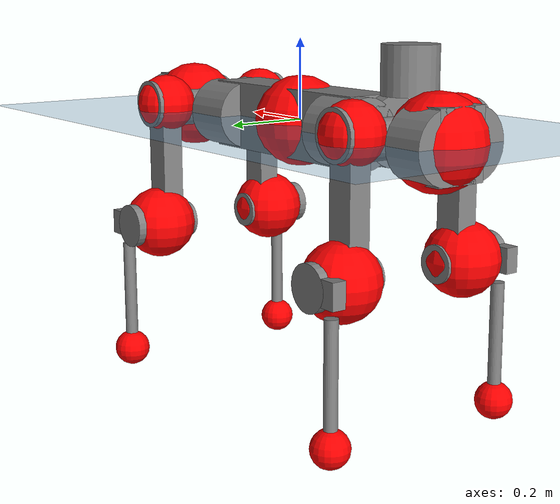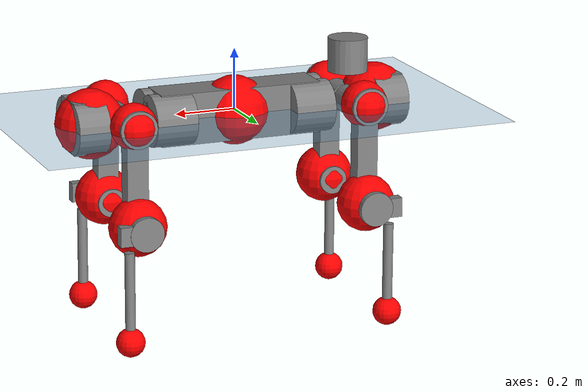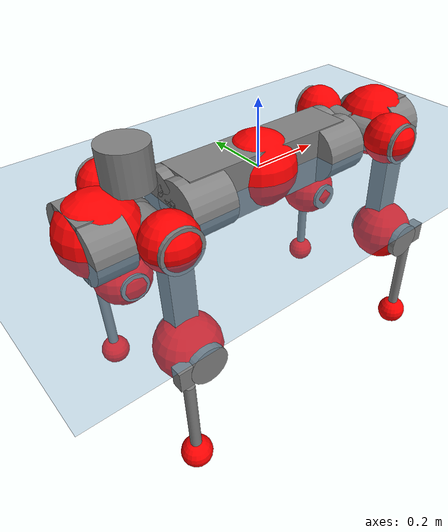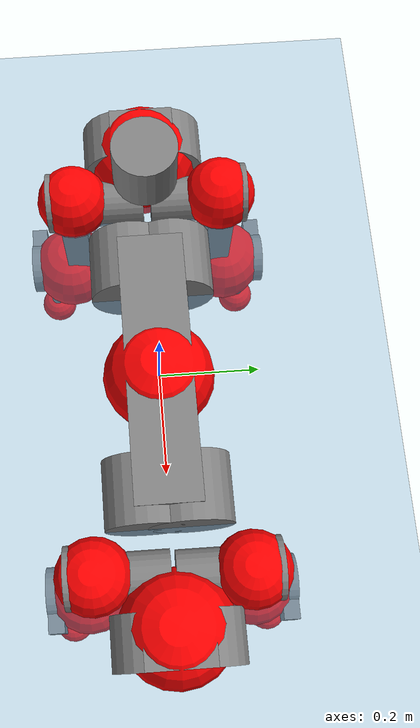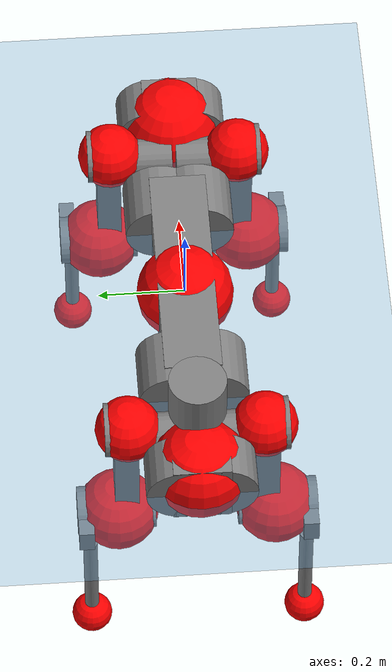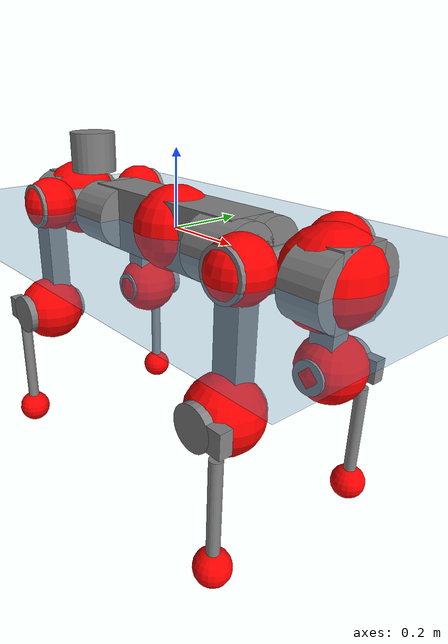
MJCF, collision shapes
<mujoco model="anymal_c">
  <compiler angle="radian" assetdir="assets" balanceinertia="true" inertiafromgeom="false"/>

  <option timestep="0.005" density="1.2" viscosity="2e-05"/>

  <size nkey="1"/>

  <visual>
    <quality shadowsize="8192"/>
    <map shadowclip="0.5"/>
  </visual>

  <default>
    <default class="/">
      <material specular="0" shininess="0.25"/>
      <geom contype="0" conaffinity="0" group="1" solref="-1000 -80"/>
      <site size="0.01 0.005 0.005" group="5"/>
      <general forcelimited="true" forcerange="-80 80" biastype="affine" gainprm="80" biasprm="0 -80 -2"/>
      <default class="anymal_c">
        <joint armature="0.01" damping="0.01" frictionloss="0.1"/>
        <default class="visual">
          <geom type="mesh" group="2"/>
          <default class="visual_zflip"/>
        </default>
        <default class="collision">
          <geom type="cylinder" group="3"/>
          <default class="foot">
            <geom size="0.03 0 0" type="sphere" condim="6" priority="1" friction="0.8 0.02 0.01" solimp="0.015 1 0.03"/>
          </default>
        </default>
      </default>
      <default class="reward_collision_sphere">
        <geom group="5" rgba="1 0 0 1"/>
      </default>
    </default>
  </default>

  <asset>
    <texture type="skybox" colorspace="auto" name="//unnamed_texture_0" builtin="gradient" rgb1="0.95 0.95 0.95" rgb2="0.95 0.95 0.95" width="100" height="600"/>
    <texture type="2d" colorspace="auto" name="texplane" builtin="checker" rgb1="0.345 0.575 0.748" rgb2="0.345 0.575 0.748" markrgb="1 1 1" width="512" height="512"/>
    <texture type="2d" colorspace="linear" name="base" file="base.png"/>
    <texture type="2d" colorspace="linear" name="top_shell" file="top_shell.png"/>
    <texture type="2d" colorspace="linear" name="bottom_shell" file="bottom_shell.png"/>
    <texture type="2d" colorspace="linear" name="remote" file="remote.png"/>
    <texture type="2d" colorspace="linear" name="hatch" file="hatch.png"/>
    <texture type="2d" colorspace="linear" name="handle" file="handle.png"/>
    <texture type="2d" colorspace="linear" name="face" file="face.png"/>
    <texture type="2d" colorspace="linear" name="battery" file="battery.png"/>
    <texture type="2d" colorspace="linear" name="lidar_cage" file="lidar_cage.png"/>
    <texture type="2d" colorspace="linear" name="depth_camera" file="depth_camera.png"/>
    <texture type="2d" colorspace="linear" name="wide_angle_camera" file="wide_angle_camera.png"/>
    <texture type="2d" colorspace="linear" name="lidar" file="lidar.png"/>
    <texture type="2d" colorspace="linear" name="drive" file="drive.png"/>
    <texture type="2d" colorspace="linear" name="hip_l" file="hip_l.png"/>
    <texture type="2d" colorspace="linear" name="shank_l" file="shank_l.png"/>
    <texture type="2d" colorspace="linear" name="foot" file="foot.png"/>
    <texture type="2d" colorspace="linear" name="thigh" file="thigh.png"/>
    <texture type="2d" colorspace="linear" name="shank_r" file="shank_r.png"/>
    <texture type="2d" colorspace="linear" name="hip_r" file="hip_r.png"/>
    <material name="MatPlane" class="/" texture="texplane" texuniform="true" texrepeat="2 2" specular="0.9" shininess="0.5"/>
    <material name="black_plastic" class="/" rgba="0.007 0.007 0.007 1"/>
    <material name="green" class="/" rgba="0.052 0.178 0.033 1"/>
    <material name="red" class="/" rgba="0.178 0.006 0.005 1"/>
    <material name="yellow" class="/" rgba="0.178 0.119 0.006 1"/>
    <material name="lwl" class="/" rgba="0.8 0.8 0.8 1"/>
    <material name="base" class="/" texture="base"/>
    <material name="top_shell" class="/" texture="top_shell"/>
    <material name="bottom_shell" class="/" texture="bottom_shell"/>
    <material name="hip_l" class="/" texture="hip_l"/>
    <material name="thigh" class="/" texture="thigh"/>
    <material name="shank_l" class="/" texture="shank_l"/>
    <material name="foot" class="/" texture="foot"/>
    <material name="hip_r" class="/" texture="hip_r"/>
    <material name="shank" class="/" texture="shank_r"/>
    <material name="hatch" class="/" texture="hatch"/>
    <material name="remote" class="/" texture="remote"/>
    <material name="handle" class="/" texture="handle"/>
    <material name="face" class="/" texture="face"/>
    <material name="depth_camera" class="/" texture="depth_camera"/>
    <material name="wide_angle_camera" class="/" texture="wide_angle_camera"/>
    <material name="battery" class="/" texture="battery"/>
    <material name="lidar_cage" class="/" texture="lidar_cage"/>
    <material name="lidar" class="/" texture="lidar"/>
    <material name="drive" class="/" texture="drive"/>
    <mesh name="base_0" class="/" file="base_0.obj"/>
    <mesh name="base_1" class="/" file="base_1.obj"/>
    <mesh name="base_2" class="/" file="base_2.obj"/>
    <mesh name="base_3" class="/" file="base_3.obj"/>
    <mesh name="base_4" class="/" file="base_4.obj"/>
    <mesh name="base_5" class="/" file="base_5.obj"/>
    <mesh name="top_shell" class="/" file="top_shell.obj"/>
    <mesh name="bottom_shell" class="/" file="bottom_shell.obj"/>
    <mesh name="remote" class="/" file="remote.obj"/>
    <mesh name="handle" class="/" file="handle.obj"/>
    <mesh name="face" class="/" file="face.obj"/>
    <mesh name="wide_angle_camera" class="/" file="wide_angle_camera.obj"/>
    <mesh name="depth_camera" class="/" file="depth_camera.obj"/>
    <mesh name="battery" class="/" file="battery.obj"/>
    <mesh name="lidar_cage" class="/" file="lidar_cage.obj"/>
    <mesh name="lidar" class="/" file="lidar.obj"/>
    <mesh name="drive" class="/" file="drive.obj"/>
    <mesh name="hip_l" class="/" file="hip_l.obj"/>
    <mesh name="thigh" class="/" file="thigh.obj"/>
    <mesh name="shank_l" class="/" file="shank_l.obj"/>
    <mesh name="foot" class="/" file="foot.obj"/>
    <mesh name="hip_r" class="/" file="hip_r.obj"/>
    <mesh name="hatch" class="/" file="hatch.obj"/>
    <mesh name="shank_r" class="/" file="shank_r.obj"/>
  </asset>

  <worldbody>
    <geom name="floor" class="/" size="100 100 0.125" type="plane" group="0" material="MatPlane"/>
    <light name="toplight_shadow" class="/" pos="0 0 5" dir="0.0990148 0.0990148 -0.990148" type="directional" ambient="0.04 0.04 0.04" diffuse="0.55 0.55 0.55" specular="0.12 0.12 0.12"/>
    <light name="toplight_fill" class="/" pos="0 0 5" dir="0.0990148 0.0990148 -0.990148" type="directional" castshadow="false" ambient="0.04 0.04 0.04" diffuse="0.3 0.3 0.3" specular="0.08 0.08 0.08"/>
    <body name="trunk" childclass="anymal_c" pos="-0.00016781 -0.000471357 -0.00192321" quat="1 4.65865e-05 -8.26731e-05 5.22279e-05">
      <inertial pos="0.00130975 -0.000352492 0.0579537" quat="0.497008 0.509212 0.500248 0.493395" mass="16.146" diaginertia="1.01711 0.0463523 0.390772"/>
      <joint name="//unnamed_joint_0" type="free" armature="0" damping="0" frictionloss="0"/>
      <geom name="//unnamed_geom_1" class="visual" material="green" mesh="base_0"/>
      <geom name="//unnamed_geom_2" class="visual" material="yellow" mesh="base_1"/>
      <geom name="//unnamed_geom_3" class="visual" material="red" mesh="base_2"/>
      <geom name="//unnamed_geom_4" class="visual" material="black_plastic" mesh="base_3"/>
      <geom name="//unnamed_geom_5" class="visual" material="lwl" mesh="base_4"/>
      <geom name="//unnamed_geom_6" class="visual" material="base" mesh="base_5"/>
      <geom name="trunk_1" class="collision" size="0.271563 0.0655497 0.0842782" type="box"/>
      <geom name="trunk_2" class="collision" size="0.0842782 0.0678907" pos="0.236819 0.0415601 0" quat="0.707107 0 0.707107 0"/>
      <geom name="trunk_3" class="collision" size="0.0842782 0.0678907" pos="-0.236819 0.0415601 0" quat="0.707107 0 0.707107 0"/>
      <geom name="trunk_4" class="collision" size="0.0842782 0.0678907" pos="0.236819 -0.0415601 0" quat="0.707107 0 0.707107 0"/>
      <geom name="trunk_5" class="collision" size="0.0842782 0.0678907" pos="-0.236819 -0.0415601 0" quat="0.707107 0 0.707107 0"/>
      <geom name="//unnamed_geom_12" class="visual" material="top_shell" mesh="top_shell"/>
      <geom name="//unnamed_geom_13" class="visual" material="bottom_shell" mesh="bottom_shell"/>
      <geom name="//unnamed_geom_14" class="visual" material="remote" mesh="remote"/>
      <geom name="//unnamed_geom_15" class="visual" material="handle" mesh="handle"/>
      <geom name="//unnamed_geom_16" class="visual" pos="0.451317 0 0" quat="1 0 0 0" material="face" mesh="face"/>
      <geom name="trunk_6" class="collision" size="0.0515033 0.0655497 0.0842782" pos="0.511203 0 0" type="box"/>
      <geom name="//unnamed_geom_18" class="collision" size="0.0842782 0.0515033" pos="0.511203 0.0415601 0" quat="0.707107 0 0.707107 0"/>
      <geom name="//unnamed_geom_19" class="collision" size="0.0842782 0.0515033" pos="0.511203 -0.0415601 0" quat="0.707107 0 0.707107 0"/>
      <geom name="//unnamed_geom_20" class="visual" pos="0.502657 0 -0.0331887" quat="0.965926 0 0.258819 0" material="depth_camera" mesh="depth_camera"/>
      <geom name="//unnamed_geom_21" class="visual" pos="0.558566 0 0.0168672" material="wide_angle_camera" mesh="wide_angle_camera"/>
      <geom name="//unnamed_geom_22" class="visual_zflip" pos="-0.451317 0 0" quat="0 0 0 1" material="face" mesh="face"/>
      <geom name="trunk_7" class="collision" size="0.0515033 0.0655497 0.0842782" pos="-0.511203 0 0" quat="0 0 0 1" type="box"/>
      <geom name="//unnamed_geom_24" class="collision" size="0.0842782 0.0515033" pos="-0.511203 -0.0415601 0" quat="0 -0.707107 0 0.707107"/>
      <geom name="//unnamed_geom_25" class="collision" size="0.0842782 0.0515033" pos="-0.511203 0.0415601 0" quat="0 -0.707107 0 0.707107"/>
      <geom name="//unnamed_geom_26" class="visual" pos="-0.502657 0 -0.0331887" quat="0 -0.258819 0 0.965926" material="depth_camera" mesh="depth_camera"/>
      <geom name="//unnamed_geom_27" class="visual_zflip" pos="-0.558566 0 0.0168672" quat="0 0 0 1" material="wide_angle_camera" mesh="wide_angle_camera"/>
      <geom name="//unnamed_geom_28" class="visual" material="battery" mesh="battery"/>
      <geom name="//unnamed_geom_29" class="visual" pos="0 0.0389002 0.0324435" quat="0.683013 -0.183013 0.183013 0.683013" material="depth_camera" mesh="depth_camera"/>
      <geom name="//unnamed_geom_30" class="visual" pos="0 -0.0389002 0.0324435" quat="0.683013 0.183013 0.183013 -0.683013" material="depth_camera" mesh="depth_camera"/>
      <geom name="//unnamed_geom_31" class="visual" pos="-0.396332 0 0.0828149" quat="1 0 0 0" material="lidar_cage" mesh="lidar_cage"/>
      <geom name="trunk_8" class="collision" size="0.0655497 0.0561854" pos="-0.396332 0 0.150419"/>
      <geom name="//unnamed_geom_33" class="visual" pos="-0.396332 -0.000194514 0.160221" quat="0.707107 0 0 -0.707107" material="lidar" mesh="lidar"/>
      <geom name="//unnamed_geom_34" class="visual" pos="0.326538 0.0619358 -9.19461e-09" quat="0.258819 0.965926 0 0" material="drive" mesh="drive"/>
      <geom name="//unnamed_geom_35" class="visual" pos="0.326538 -0.0619358 9.19461e-09" quat="0.258819 -0.965926 0 0" material="drive" mesh="drive"/>
      <geom name="//unnamed_geom_36" class="visual" pos="-0.326538 0.0619358 9.19461e-09" quat="0 0 0.965926 -0.258819" material="drive" mesh="drive"/>
      <geom name="//unnamed_geom_37" class="visual" pos="-0.326538 -0.0619358 -9.19461e-09" quat="0 0 -0.965926 -0.258819" material="drive" mesh="drive"/>
      <geom name="//unnamed_geom_38" class="visual" pos="0.126303 0 0.0822515" quat="1 0 0 0" material="hatch" mesh="hatch"/>
      <geom name="//unnamed_geom_39" class="reward_collision_sphere" size="0.112371"/>
      <geom name="//unnamed_geom_40" class="reward_collision_sphere" size="0.112371" pos="0.48997 0 0"/>
      <geom name="//unnamed_geom_41" class="reward_collision_sphere" size="0.112371" pos="-0.48997 0 0"/>
      <site name="imu" pos="0.277235 0.0015453 0.0538641" size="0.00936424"/>
      <camera name="track" pos="0 -1.18743 0" quat="0.707107 0.707107 0 0" mode="trackcom"/>
      <camera name="ego_camera" pos="0.48997 0 -0.0450693" quat="-0.5 -0.5 0.5 0.5"/>
      <body name="LF_HIP" pos="0.328079 0.0602439 0.000146927" quat="0.258582 0.965988 -0.000893587 -0.00106153">
        <inertial pos="0.0618884 -0.0115334 -0.00857199" quat="-0.127963 0.713114 -0.12365 0.678089" mass="2.31102" diaginertia="0.00910328 0.000370333 0.00623669"/>
        <joint name="LF_HAA" pos="0 0 0" axis="0.999957 0.00840959 -0.00378427" range="-0.709466 0.539467" armature="0.00909497" damping="0.0139203" frictionloss="0.0872768"/>
        <geom name="//unnamed_geom_42" class="visual" pos="0 -0.000540878 8.88387e-05" quat="0.258819 -0.965926 0 0" material="hip_l" mesh="hip_l"/>
        <geom name="//unnamed_geom_43" class="visual" pos="0.0652205 -0.072699 -0.0459153" quat="0.183013 -0.683013 0.683013 0.183013" material="drive" mesh="drive"/>
        <geom name="//unnamed_geom_44" class="collision" size="0.0468212 0.0655497" pos="0.0652205 -0.00710072 -0.00778009" quat="-0.353553 -0.612372 0.612372 -0.353553"/>
        <body name="LF_THIGH" pos="0.0658631 -0.0447034 -0.0469977" quat="0.183069 -0.682791 0.683257 0.182872">
          <inertial pos="0.0366747 -0.000513361 -0.276832" quat="0.99208 -0.00244184 -0.0820715 0.0950597" mass="2.57527" diaginertia="0.0459601 0.00218923 0.00742179"/>
          <joint name="LF_HFE" pos="0 0 0" axis="0.99999 0.00413952 0.00145639" stiffness="0.0101676" range="-3.19103 3.16696" armature="0.00982246" damping="0" frictionloss="0.0920506"/>
          <geom name="//unnamed_geom_45" class="visual" pos="0.0098507 1.55224e-05 0" quat="0.707107 0 0 -0.707107" material="thigh" mesh="thigh"/>
          <geom name="//unnamed_geom_46" class="collision" size="0.0608676 0.037457" pos="0.0435529 0 0" quat="0.5 0.5 -0.5 -0.5"/>
          <geom name="//unnamed_geom_47" class="collision" size="0.0351159 0.0280927 0.13233" pos="0.0326647 0 -0.159223" quat="0.707107 0 0 -0.707107" type="box"/>
          <geom name="//unnamed_geom_48" class="visual" pos="0.109209 0 -0.321119" quat="1 0 0 0" material="drive" mesh="drive"/>
          <geom name="//unnamed_geom_49" class="collision" size="0.0468212 0.0655497" pos="0.0329913 0 -0.321119" quat="0.707107 0 0.707107 0"/>
          <geom name="//unnamed_geom_50" class="reward_collision_sphere" size="0.0749139" pos="0.0272206 0 0"/>
          <body name="LF_SHANK" pos="0.110559 -0.00112674 -0.320046" quat="1 0.000142386 -0.000477705 -0.000260794">
            <inertial pos="0.00418161 -0.0361178 -0.0928619" quat="0.994132 -0.105433 -0.00160707 -0.0241586" mass="0.47267" diaginertia="0.015003 0.000681877 0.00192345"/>
            <joint name="LF_KFE" pos="0 0 0" axis="0.999928 -0.0106012 0.00564172" range="-3.18221 3.19163" armature="0.0106196" damping="0.00386199" frictionloss="0.104265"/>
            <geom name="//unnamed_geom_51" class="visual" pos="0.0032121 0.0171271 0" quat="0.707107 0 0 -0.707107" material="shank_l" mesh="shank_l"/>
            <geom name="LF_kfe_act" class="collision" size="0.0561854 0.0187285" pos="0.0217765 0 0" quat="0.5 0.5 -0.5 -0.5"/>
            <geom name="//unnamed_geom_53" class="collision" size="0.0538434 0.0316043 0.0177921" pos="0.0217765 -0.0341381 0" quat="0.5 0.5 -0.5 -0.5" type="box"/>
            <geom name="//unnamed_geom_54" class="visual" pos="0.0142084 -0.0466979 -0.380802" quat="0.382683 0 0 -0.92388" material="foot" mesh="foot"/>
            <geom name="LF_calf" class="collision" size="0.0163874 0.132272" pos="0.0142091 -0.0522173 -0.190401" quat="0.707107 0 0 -0.707107"/>
            <geom name="LF_foot" class="foot" size="0.0246508" pos="0.0142091 -0.0522173 -0.355451" quat="0.707107 0 0 -0.707107"/>
            <geom name="//unnamed_geom_57" class="reward_collision_sphere" size="0.0936424" pos="-0.0544412 0 0"/>
            <geom name="//unnamed_geom_58" class="reward_collision_sphere" size="0.0468212" pos="0.0142091 -0.0522173 -0.355451"/>
            <site name="LF_foot" class="foot" pos="0.0142091 -0.0522173 -0.355451" quat="0.707107 0 0 -0.707107" size="0.00936424"/>
          </body>
        </body>
      </body>
      <body name="RF_HIP" pos="0.324775 -0.0602869 -0.000796481" quat="0.258003 -0.966144 0.000121761 -0.000652673">
        <inertial pos="0.062251 0.00969332 -0.00983575" quat="0.131441 0.678965 0.127386 0.710987" mass="2.288" diaginertia="0.00890647 0.00038528 0.00617187"/>
        <joint name="RF_HAA" pos="0 0 0" axis="0.999883 0.0143787 -0.00515606" range="-0.491357 0.74139" armature="0.00921968" damping="0.0133884" frictionloss="0.0924651"/>
        <geom name="//unnamed_geom_59" class="visual" pos="0 0.000540873 8.88385e-05" quat="0.258819 0.965926 0 0" material="hip_r" mesh="hip_r"/>
        <geom name="//unnamed_geom_60" class="visual" pos="0.0652205 0.072699 -0.0459153" quat="0.183013 0.683013 0.683013 -0.183013" material="drive" mesh="drive"/>
        <geom name="//unnamed_geom_61" class="collision" size="0.0468212 0.0655497" pos="0.0652205 0.00710072 -0.00778009" quat="-0.353553 0.612372 0.612372 0.353553"/>
        <body name="RF_THIGH" pos="0.0628229 0.0425385 -0.0499785" quat="0.182759 0.683909 0.682192 -0.182978">
          <inertial pos="0.0332365 0.000914433 -0.276602" quat="0.992886 -0.00520854 -0.081997 0.0861793" mass="2.49065" diaginertia="0.0454193 0.00222701 0.00771977"/>
          <joint name="RF_HFE" pos="0 0 0" axis="0.999998 -0.00197933 -0.00102999" stiffness="0.00877371" range="-3.16482 3.18297" armature="0.00940709" damping="0" frictionloss="0.0839187"/>
          <geom name="//unnamed_geom_62" class="visual" pos="0.0098507 1.55224e-05 0" quat="0.707107 0 0 -0.707107" material="thigh" mesh="thigh"/>
          <geom name="//unnamed_geom_63" class="collision" size="0.0608676 0.037457" pos="0.0435529 0 0" quat="0.5 0.5 0.5 0.5"/>
          <geom name="//unnamed_geom_64" class="collision" size="0.0351159 0.0280927 0.13233" pos="0.0326647 0 -0.159223" quat="0.707107 0 0 0.707107" type="box"/>
          <geom name="//unnamed_geom_65" class="visual" pos="0.109209 0 -0.321119" quat="1 0 0 0" material="drive" mesh="drive"/>
          <geom name="//unnamed_geom_66" class="collision" size="0.0468212 0.0655497" pos="0.0329913 0 -0.321119" quat="0.707107 0 0.707107 0"/>
          <geom name="//unnamed_geom_67" class="reward_collision_sphere" size="0.0749139" pos="0.0272206 0 0"/>
          <body name="RF_SHANK" pos="0.108906 0.000500326 -0.317967" quat="1 0.000102891 -0.000126201 0.00031549">
            <inertial pos="0.00663811 0.0371576 -0.0910308" quat="0.993624 0.111052 0.00759387 0.0179326" mass="0.475121" diaginertia="0.0156689 0.000668109 0.00200311"/>
            <joint name="RF_KFE" pos="0 0 0" axis="0.999862 0.00810846 -0.0144918" range="-3.18553 3.18228" armature="0.00820583" damping="0.009969" frictionloss="0.0973386"/>
            <geom name="//unnamed_geom_68" class="visual" pos="0.00321208 -0.017127 0" quat="0.707107 0 0 0.707107" material="shank" mesh="shank_r"/>
            <geom name="RF_kfe_act" class="collision" size="0.0561854 0.0187285" pos="0.0217765 0 0" quat="0.5 0.5 0.5 0.5"/>
            <geom name="//unnamed_geom_70" class="collision" size="0.0538434 0.0316043 0.0177921" pos="0.0217765 0.0341381 0" quat="0.5 0.5 0.5 0.5" type="box"/>
            <geom name="//unnamed_geom_71" class="visual" pos="0.0142099 0.0466979 -0.380802" quat="0.382683 0 0 0.92388" material="foot" mesh="foot"/>
            <geom name="RF_calf" class="collision" size="0.0163874 0.132272" pos="0.0142091 0.0522173 -0.190401" quat="0.707107 0 0 0.707107"/>
            <geom name="RF_foot" class="foot" size="0.0303032" pos="0.0142091 0.0522173 -0.355451" quat="0.707107 0 0 0.707107"/>
            <geom name="//unnamed_geom_74" class="reward_collision_sphere" size="0.0936424" pos="-0.0544412 0 0"/>
            <geom name="//unnamed_geom_75" class="reward_collision_sphere" size="0.0468212" pos="0.0142091 0.0522173 -0.355451"/>
            <site name="RF_foot" class="foot" pos="0.0142091 0.0522173 -0.355451" quat="0.707107 0 0 0.707107" size="0.00936424"/>
          </body>
        </body>
      </body>
      <body name="LH_HIP" pos="-0.32539 0.0647828 0.00011095" quat="0.000504394 0.00110329 0.965968 -0.258658">
        <inertial pos="0.0645847 0.0089313 -0.0101914" quat="0.13428 0.675985 0.117679 0.714958" mass="2.30747" diaginertia="0.00859659 0.000355798 0.00589738"/>
        <joint name="LH_HAA" pos="0 0 0" axis="0.999887 0.014399 -0.00433566" range="-0.4412 0.763034" armature="0.00927689" damping="0" frictionloss="0.0978648"/>
        <geom name="//unnamed_geom_76" class="visual" pos="0 0.000540873 8.88385e-05" quat="-0.258819 -0.965926 0 0" material="hip_r" mesh="hip_r"/>
        <geom name="//unnamed_geom_77" class="visual" pos="0.0652205 0.072699 -0.0459153" quat="0.183013 0.683013 0.683013 -0.183013" material="drive" mesh="drive"/>
        <geom name="//unnamed_geom_78" class="collision" size="0.0468212 0.0655497" pos="0.0652205 0.00710072 -0.00778009" quat="-0.353553 0.612372 0.612372 0.353553"/>
        <body name="LH_THIGH" pos="0.0626549 0.044914 -0.0500556" quat="0.183101 0.682994 0.682976 -0.18313">
          <inertial pos="0.0334989 0.00101905 -0.277531" quat="0.992728 -0.00359484 -0.0812087 0.0887838" mass="2.52065" diaginertia="0.0460568 0.00213433 0.00781034"/>
          <joint name="LH_HFE" pos="0 0 0" axis="0.999993 -0.00249751 0.00280322" stiffness="0.00752137" range="-3.14287 3.13604" armature="0.00810177" damping="0" frictionloss="0.106066"/>
          <geom name="//unnamed_geom_79" class="visual" pos="0.0098507 1.55224e-05 0" quat="0.707107 0 0 -0.707107" material="thigh" mesh="thigh"/>
          <geom name="//unnamed_geom_80" class="collision" size="0.0608676 0.037457" pos="0.0435529 0 0" quat="0.5 0.5 -0.5 -0.5"/>
          <geom name="//unnamed_geom_81" class="collision" size="0.0351159 0.0280927 0.13233" pos="0.0326647 0 -0.159223" quat="0.707107 0 0 -0.707107" type="box"/>
          <geom name="//unnamed_geom_82" class="visual" pos="0.109209 0 -0.321119" quat="1 0 0 0" material="drive" mesh="drive"/>
          <geom name="//unnamed_geom_83" class="collision" size="0.0468212 0.0655497" pos="0.0329913 0 -0.321119" quat="0.707107 0 0.707107 0"/>
          <geom name="//unnamed_geom_84" class="reward_collision_sphere" size="0.0749139" pos="0.0272206 0 0"/>
          <body name="LH_SHANK" pos="0.107001 -0.00124603 -0.324137" quat="0.999999 -0.000894926 0.000264559 -0.00119772">
            <inertial pos="0.00607997 0.0364907 -0.0903722" quat="0.992267 0.121305 0.00707865 0.0253131" mass="0.482832" diaginertia="0.0154037 0.000683219 0.00206145"/>
            <joint name="LH_KFE" pos="0 0 0" axis="0.999943 0.00820766 0.00681496" range="-3.13204 3.13259" armature="0.00877223" damping="0.0147106" frictionloss="0.103762"/>
            <geom name="//unnamed_geom_85" class="visual" pos="0.00321208 -0.017127 0" quat="-0.707107 0 0 -0.707107" material="shank" mesh="shank_r"/>
            <geom name="LH_kfe_act" class="collision" size="0.0561854 0.0187285" pos="0.0217765 0 0" quat="0.5 0.5 -0.5 -0.5"/>
            <geom name="//unnamed_geom_87" class="collision" size="0.0538434 0.0316043 0.0177921" pos="0.0217765 0.0341381 0" quat="0.5 0.5 -0.5 -0.5" type="box"/>
            <geom name="//unnamed_geom_88" class="visual" pos="0.0142099 0.0466979 -0.380802" quat="-0.382683 0 0 -0.92388" material="foot" mesh="foot"/>
            <geom name="LH_calf" class="collision" size="0.0163874 0.132272" pos="0.0142091 0.0522173 -0.190401" quat="0.707107 0 0 -0.707107"/>
            <geom name="LH_foot" class="foot" size="0.0257694" pos="0.0142091 0.0522173 -0.355451" quat="0.707107 0 0 -0.707107"/>
            <geom name="//unnamed_geom_91" class="reward_collision_sphere" size="0.0936424" pos="-0.0544412 0 0"/>
            <geom name="//unnamed_geom_92" class="reward_collision_sphere" size="0.0468212" pos="0.0142091 0.0522173 -0.355451"/>
            <site name="LH_foot" class="foot" pos="0.0142091 0.0522173 -0.355451" quat="0.707107 0 0 -0.707107" size="0.00936424"/>
          </body>
        </body>
      </body>
      <body name="RH_HIP" pos="-0.327321 -0.0622245 -0.00228618" quat="-0.000323838 -9.30333e-05 -0.966036 -0.258408">
        <inertial pos="0.0619005 -0.00838777 -0.00888944" quat="-0.132842 0.708544 -0.125469 0.681598" mass="2.19834" diaginertia="0.00862816 0.000351566 0.00583322"/>
        <joint name="RH_HAA" pos="0 0 0" axis="1 0.000458466 0.00022" range="-0.737982 0.470098" armature="0.00937831" damping="0.000976498" frictionloss="0.0941341"/>
        <geom name="//unnamed_geom_93" class="visual" pos="0 -0.000540878 8.88387e-05" quat="-0.258819 0.965926 0 0" material="hip_l" mesh="hip_l"/>
        <geom name="//unnamed_geom_94" class="visual" pos="0.0652205 -0.072699 -0.0459153" quat="-0.183013 0.683013 -0.683013 -0.183013" material="drive" mesh="drive"/>
        <geom name="//unnamed_geom_95" class="collision" size="0.0468212 0.0655497" pos="0.0652205 -0.00710072 -0.00778009" quat="0.353553 0.612372 -0.612372 0.353553"/>
        <body name="RH_THIGH" pos="0.0647806 -0.0462926 -0.0480381" quat="-0.182964 0.682485 -0.683518 -0.183143">
          <inertial pos="0.0356367 -0.00208347 -0.275588" quat="0.993051 -0.00434537 -0.0810231 0.0852445" mass="2.60537" diaginertia="0.046892 0.00222611 0.00793159"/>
          <joint name="RH_HFE" pos="0 0 0" axis="0.999998 0.00190311 0.000269863" range="-3.15169 3.14513" armature="0.00805484" damping="0" frictionloss="0.0932634"/>
          <geom name="//unnamed_geom_96" class="visual" pos="0.0098507 1.55224e-05 0" quat="0.707107 0 0 -0.707107" material="thigh" mesh="thigh"/>
          <geom name="//unnamed_geom_97" class="collision" size="0.0608676 0.037457" pos="0.0435529 0 0" quat="0.5 0.5 0.5 0.5"/>
          <geom name="//unnamed_geom_98" class="collision" size="0.0351159 0.0280927 0.13233" pos="0.0326647 0 -0.159223" quat="0.707107 0 0 0.707107" type="box"/>
          <geom name="//unnamed_geom_99" class="visual" pos="0.109209 0 -0.321119" quat="1 0 0 0" material="drive" mesh="drive"/>
          <geom name="//unnamed_geom_100" class="collision" size="0.0468212 0.0655497" pos="0.0329913 0 -0.321119" quat="0.707107 0 0.707107 0"/>
          <geom name="//unnamed_geom_101" class="reward_collision_sphere" size="0.0749139" pos="0.0272206 0 0"/>
          <body name="RH_SHANK" pos="0.109491 -0.00144038 -0.318698" quat="0.999999 -0.00102902 -0.000777161 0.000499499">
            <inertial pos="0.00342313 -0.0364403 -0.0915311" quat="0.992638 -0.118477 0.00191821 -0.025079" mass="0.482895" diaginertia="0.0149886 0.000686398 0.00200008"/>
            <joint name="RH_KFE" pos="0 0 0" axis="1 3.70974e-08 5.42145e-05" stiffness="0.00289484" range="-3.14077 3.0852" armature="0.00975797" damping="0.0186616" frictionloss="0.0930184"/>
            <geom name="//unnamed_geom_102" class="visual" pos="0.0032121 0.0171271 0" quat="0.707107 0 0 -0.707107" material="shank_l" mesh="shank_l"/>
            <geom name="RH_kfe_act" class="collision" size="0.0561854 0.0187285" pos="0.0217765 0 0" quat="0.5 0.5 0.5 0.5"/>
            <geom name="//unnamed_geom_104" class="collision" size="0.0538434 0.0316043 0.0177921" pos="0.0217765 -0.0341381 0" quat="0.5 0.5 0.5 0.5" type="box"/>
            <geom name="//unnamed_geom_105" class="visual" pos="0.0142084 -0.0466979 -0.380802" quat="0.382683 0 0 -0.92388" material="foot" mesh="foot"/>
            <geom name="RH_calf" class="collision" size="0.0163874 0.132272" pos="0.0142091 -0.0522173 -0.190401" quat="0.707107 0 0 0.707107"/>
            <geom name="RH_foot" class="foot" size="0.0253073" pos="0.0142091 -0.0522173 -0.355451" quat="0.707107 0 0 0.707107"/>
            <geom name="//unnamed_geom_108" class="reward_collision_sphere" size="0.0936424" pos="-0.0544412 0 0"/>
            <geom name="//unnamed_geom_109" class="reward_collision_sphere" size="0.0468212" pos="0.0142091 -0.0522173 -0.355451"/>
            <site name="RH_foot" class="foot" pos="0.0142091 -0.0522173 -0.355451" quat="0.707107 0 0 0.707107" size="0.00936424"/>
          </body>
        </body>
      </body>
    </body>
  </worldbody>

  <contact>
    <pair class="/" geom1="floor" geom2="LF_foot" name="//unnamed_contact_0"/>
    <pair class="/" geom1="floor" geom2="RF_foot" name="//unnamed_contact_1"/>
    <pair class="/" geom1="floor" geom2="LH_foot" name="//unnamed_contact_2"/>
    <pair class="/" geom1="floor" geom2="RH_foot" name="//unnamed_contact_3"/>
  </contact>

  <actuator>
    <general name="LF_HAA" class="/" joint="LF_HAA" forcerange="-73.6465 73.6465" gainprm="65.252" biasprm="0 -65.252 -1.75718"/>
    <general name="LF_HFE" class="/" joint="LF_HFE" forcerange="-67.7681 67.7681" gainprm="65.252" biasprm="0 -65.252 -1.75718"/>
    <general name="LF_KFE" class="/" joint="LF_KFE" forcerange="-71.2849 71.2849" gainprm="65.252" biasprm="0 -65.252 -1.75718"/>
    <general name="RF_HAA" class="/" joint="RF_HAA" forcerange="-69.1253 69.1253" gainprm="65.252" biasprm="0 -65.252 -1.75718"/>
    <general name="RF_HFE" class="/" joint="RF_HFE" forcerange="-84.6628 84.6628" gainprm="65.252" biasprm="0 -65.252 -1.75718"/>
    <general name="RF_KFE" class="/" joint="RF_KFE" forcerange="-73.5613 73.5613" gainprm="65.252" biasprm="0 -65.252 -1.75718"/>
    <general name="LH_HAA" class="/" joint="LH_HAA" forcerange="-75.2648 75.2648" gainprm="65.252" biasprm="0 -65.252 -1.75718"/>
    <general name="LH_HFE" class="/" joint="LH_HFE" forcerange="-73.9299 73.9299" gainprm="65.252" biasprm="0 -65.252 -1.75718"/>
    <general name="LH_KFE" class="/" joint="LH_KFE" forcerange="-73.2709 73.2709" gainprm="65.252" biasprm="0 -65.252 -1.75718"/>
    <general name="RH_HAA" class="/" joint="RH_HAA" forcerange="-68.7402 68.7402" gainprm="65.252" biasprm="0 -65.252 -1.75718"/>
    <general name="RH_HFE" class="/" joint="RH_HFE" forcerange="-77.3367 77.3367" gainprm="65.252" biasprm="0 -65.252 -1.75718"/>
    <general name="RH_KFE" class="/" joint="RH_KFE" forcerange="-77.7535 77.7535" gainprm="65.252" biasprm="0 -65.252 -1.75718"/>
  </actuator>

  <sensor>
    <gyro site="imu" name="imu_angular_velocity"/>
    <velocimeter site="imu" name="imu_linear_velocity"/>
    <framelinvel objtype="site" objname="LF_foot" name="LF_foot_global_linear_velocity"/>
    <framelinvel objtype="site" objname="RF_foot" name="RF_foot_global_linear_velocity"/>
    <framelinvel objtype="site" objname="LH_foot" name="LH_foot_global_linear_velocity"/>
    <framelinvel objtype="site" objname="RH_foot" name="RH_foot_global_linear_velocity"/>
  </sensor>

  <keyframe>
    <key name="home" qpos="0 0 0.55 1 0 0 0 0 0.4 -0.8 0 -0.4 0.8 0 -0.4 0.8 0 0.4 -0.8"/>
  </keyframe>
</mujoco>
